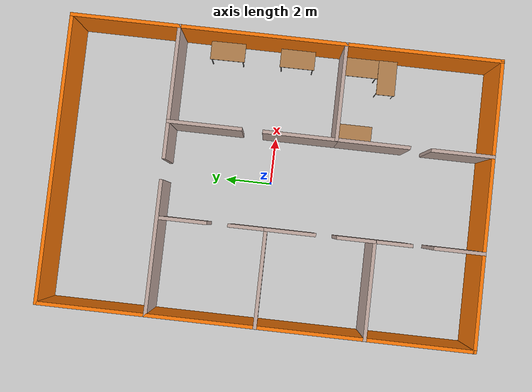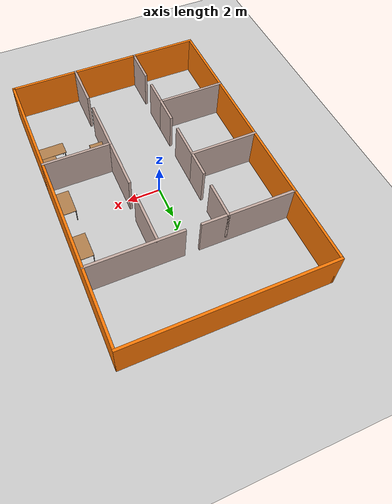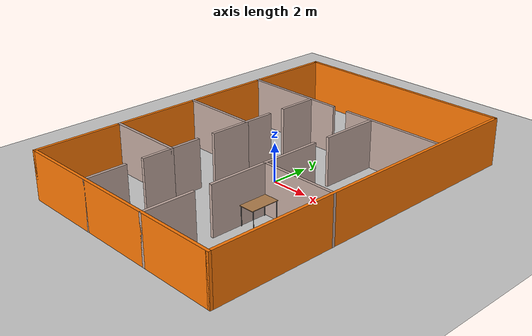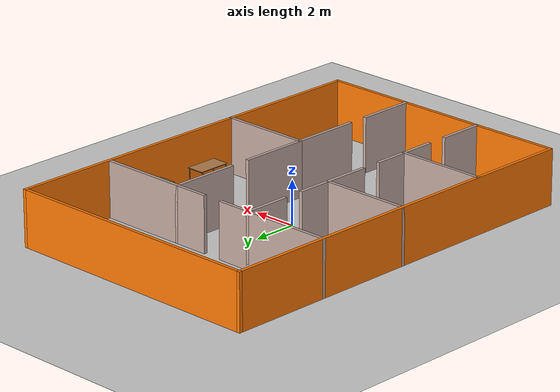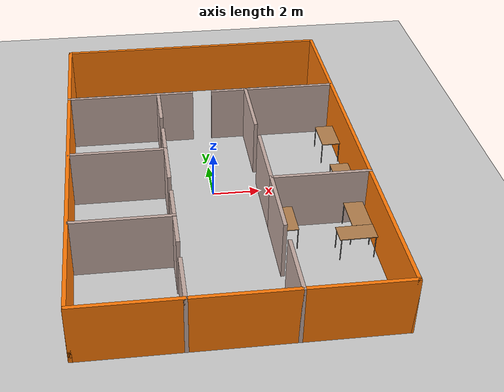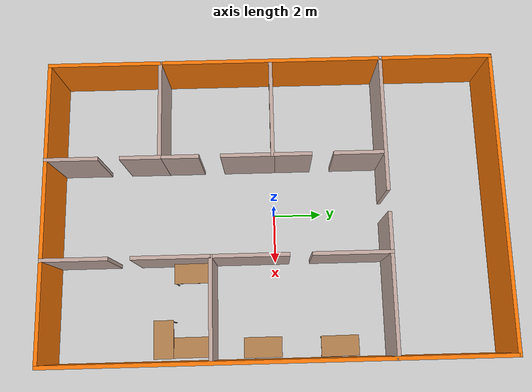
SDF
<sdf version="1.7">
 <world name="default">
  <light name="sun" type="directional">
   <pose>0 0 10 0 -0 0</pose>
   <diffuse>0.8 0.8 0.8 1</diffuse>
   <specular>0.2 0.2 0.2 1</specular>
   <attenuation>
    <range>1000</range>
    <constant>0.9</constant>
    <linear>0.01</linear>
    <quadratic>0.001</quadratic>
   </attenuation>
   <direction>-0.5 0.1 -0.9</direction>
   <spot><inner_angle>0</inner_angle><outer_angle>0</outer_angle><falloff>0</falloff></spot>
  </light>
  <model name="ground_plane">
   <static>1</static>
   <link name="link">
    <collision name="collision">
     <geometry><plane><normal>0 0 1</normal><size>100 100</size></plane></geometry>
     <surface>
      <contact><collide_bitmask>65535</collide_bitmask></contact>
      <friction><ode><mu>100</mu><mu2>50</mu2></ode></friction>
     </surface>
    </collision>
    <visual name="visual">
     <cast_shadows>0</cast_shadows>
     <geometry><plane><normal>0 0 1</normal><size>100 100</size></plane></geometry>
     <material>
      <script><uri>file://media/materials/scripts/gazebo.material</uri><name>Gazebo/Grey</name></script>
     </material>
    </visual>
   </link>
  </model>
  <gravity>0 0 -9.8</gravity>
  <magnetic_field>6e-06 2.3e-05 -4.2e-05</magnetic_field>
  <atmosphere type="adiabatic"/>
  <physics type="ode">
   <max_step_size>0.001</max_step_size>
   <real_time_factor>1</real_time_factor>
   <real_time_update_rate>1000</real_time_update_rate>
  </physics>
  <scene><ambient>0.4 0.4 0.4 1</ambient><background>0.7 0.7 0.7 1</background><shadows>1</shadows></scene>
  <audio><device>default</device></audio>
  <spherical_coordinates>
   <surface_model>EARTH_WGS84</surface_model>
   <latitude_deg>0</latitude_deg>
   <longitude_deg>0</longitude_deg>
   <elevation>0</elevation>
   <heading_deg>0</heading_deg>
  </spherical_coordinates>
  <model name="map_offices">
   <link name="Wall_10">
    <collision name="Wall_10_Collision">
     <geometry><box><size>12.15 0.15 2.5</size></box></geometry>
     <pose>0 0 1.25 0 -0 0</pose>
    </collision>
    <visual name="Wall_10_Visual">
     <pose>0 0 1.25 0 -0 0</pose>
     <geometry><box><size>12.15 0.15 2.5</size></box></geometry>
     <material>
      <script><uri>file://media/materials/scripts/gazebo.material</uri><name>Gazebo/Grey</name></script>
      <ambient>0.996078 0.47451 0.0196078 1</ambient>
     </material>
     <meta><layer>0</layer></meta>
    </visual>
    <pose>0 -9 0 0 -0 0</pose>
   </link>
   <link name="Wall_12">
    <collision name="Wall_12_Collision">
     <geometry><box><size>18.15 0.15 2.5</size></box></geometry>
     <pose>0 0 1.25 0 -0 0</pose>
    </collision>
    <visual name="Wall_12_Visual">
     <pose>0 0 1.25 0 -0 0</pose>
     <geometry><box><size>18.15 0.15 2.5</size></box></geometry>
     <material>
      <script><uri>file://media/materials/scripts/gazebo.material</uri><name>Gazebo/Grey</name></script>
      <ambient>0.996078 0.47451 0.0196078 1</ambient>
     </material>
     <meta><layer>0</layer></meta>
    </visual>
    <pose>-6 0 0 0 -0 -1.5708</pose>
   </link>
   <link name="Wall_14">
    <collision name="Wall_14_Collision">
     <geometry><box><size>18.15 0.15 2.5</size></box></geometry>
     <pose>0 0 1.25 0 -0 0</pose>
    </collision>
    <visual name="Wall_14_Visual">
     <pose>0 0 1.25 0 -0 0</pose>
     <geometry><box><size>18.15 0.15 2.5</size></box></geometry>
     <material>
      <script><uri>file://media/materials/scripts/gazebo.material</uri><name>Gazebo/Grey</name></script>
      <ambient>0.996078 0.47451 0.0196078 1</ambient>
     </material>
     <meta><layer>0</layer></meta>
    </visual>
    <pose>6 0 0 0 -0 -1.5708</pose>
   </link>
   <link name="Wall_17">
    <collision name="Wall_17_Collision">
     <geometry><box><size>5.65 0.15 2.5</size></box></geometry>
     <pose>0 0 1.25 0 -0 0</pose>
    </collision>
    <visual name="Wall_17_Visual">
     <pose>0 0 1.25 0 -0 0</pose>
     <geometry><box><size>5.65 0.15 2.5</size></box></geometry>
     <material>
      <script><uri>file://media/materials/scripts/gazebo.material</uri><name>Gazebo/Grey</name></script>
      <ambient>0.760784 0.662745 0.627451 1</ambient>
     </material>
     <meta><layer>0</layer></meta>
    </visual>
    <pose>-3.25 4.5 0 0 -0 0</pose>
   </link>
   <link name="Wall_19">
    <collision name="Wall_19_Collision">
     <geometry><box><size>5.65 0.15 2.5</size></box></geometry>
     <pose>0 0 1.25 0 -0 0</pose>
    </collision>
    <visual name="Wall_19_Visual">
     <pose>0 0 1.25 0 -0 0</pose>
     <geometry><box><size>5.65 0.15 2.5</size></box></geometry>
     <material>
      <script><uri>file://media/materials/scripts/gazebo.material</uri><name>Gazebo/Grey</name></script>
      <ambient>0.760784 0.662745 0.627451 1</ambient>
     </material>
     <meta><layer>0</layer></meta>
    </visual>
    <pose>3.25 4.5 0 0 -0 0</pose>
   </link>
   <link name="Wall_21">
    <collision name="Wall_21_Collision">
     <geometry><box><size>2.15 0.15 2.5</size></box></geometry>
     <pose>0 0 1.25 0 -0 0</pose>
    </collision>
    <visual name="Wall_21_Visual">
     <pose>0 0 1.25 0 -0 0</pose>
     <geometry><box><size>2.15 0.15 2.5</size></box></geometry>
     <material>
      <script><uri>file://media/materials/scripts/gazebo.material</uri><name>Gazebo/Grey</name></script>
      <ambient>0.760784 0.662745 0.627451 1</ambient>
     </material>
     <meta><layer>0</layer></meta>
    </visual>
    <pose>-2 3.5 0 0 -0 -1.5708</pose>
   </link>
   <link name="Wall_23">
    <collision name="Wall_23_Collision">
     <geometry><box><size>1.65 0.15 2.5</size></box></geometry>
     <pose>0 0 1.25 0 -0 0</pose>
    </collision>
    <visual name="Wall_23_Visual">
     <pose>0 0 1.25 0 -0 0</pose>
     <geometry><box><size>1.65 0.15 2.5</size></box></geometry>
     <material>
      <script><uri>file://media/materials/scripts/gazebo.material</uri><name>Gazebo/Grey</name></script>
      <ambient>0.760784 0.662745 0.627451 1</ambient>
     </material>
     <meta><layer>0</layer></meta>
    </visual>
    <pose>-2 0.75 0 0 -0 -1.5708</pose>
   </link>
   <link name="Wall_25">
    <collision name="Wall_25_Collision">
     <geometry><box><size>4.15 0.15 2.5</size></box></geometry>
     <pose>0 0 1.25 0 -0 0</pose>
    </collision>
    <visual name="Wall_25_Visual">
     <pose>0 0 1.25 0 -0 0</pose>
     <geometry><box><size>4.15 0.15 2.5</size></box></geometry>
     <material>
      <script><uri>file://media/materials/scripts/gazebo.material</uri><name>Gazebo/Grey</name></script>
      <ambient>0.760784 0.662745 0.627451 1</ambient>
     </material>
     <meta><layer>0</layer></meta>
    </visual>
    <pose>-4 0 0 0 -0 3.14159</pose>
   </link>
   <link name="Wall_27">
    <collision name="Wall_27_Collision">
     <geometry><box><size>2.15 0.15 2.5</size></box></geometry>
     <pose>0 0 1.25 0 -0 0</pose>
    </collision>
    <visual name="Wall_27_Visual">
     <pose>0 0 1.25 0 -0 0</pose>
     <geometry><box><size>2.15 0.15 2.5</size></box></geometry>
     <material>
      <script><uri>file://media/materials/scripts/gazebo.material</uri><name>Gazebo/Grey</name></script>
      <ambient>0.760784 0.662745 0.627451 1</ambient>
     </material>
     <meta><layer>0</layer></meta>
    </visual>
    <pose>-2 -1 0 0 -0 -1.5708</pose>
   </link>
   <link name="Wall_29">
    <collision name="Wall_29_Collision">
     <geometry><box><size>1.65 0.15 2.5</size></box></geometry>
     <pose>0 0 1.25 0 -0 0</pose>
    </collision>
    <visual name="Wall_29_Visual">
     <pose>0 0 1.25 0 -0 0</pose>
     <geometry><box><size>1.65 0.15 2.5</size></box></geometry>
     <material>
      <script><uri>file://media/materials/scripts/gazebo.material</uri><name>Gazebo/Grey</name></script>
      <ambient>0.760784 0.662745 0.627451 1</ambient>
     </material>
     <meta><layer>0</layer></meta>
    </visual>
    <pose>-2 -3.75 0 0 -0 -1.5708</pose>
   </link>
   <link name="Wall_31">
    <collision name="Wall_31_Collision">
     <geometry><box><size>4.15 0.15 2.5</size></box></geometry>
     <pose>0 0 1.25 0 -0 0</pose>
    </collision>
    <visual name="Wall_31_Visual">
     <pose>0 0 1.25 0 -0 0</pose>
     <geometry><box><size>4.15 0.15 2.5</size></box></geometry>
     <material>
      <script><uri>file://media/materials/scripts/gazebo.material</uri><name>Gazebo/Grey</name></script>
      <ambient>0.760784 0.662745 0.627451 1</ambient>
     </material>
     <meta><layer>0</layer></meta>
    </visual>
    <pose>-4 -4.5 0 0 -0 3.14159</pose>
   </link>
   <link name="Wall_33">
    <collision name="Wall_33_Collision">
     <geometry><box><size>1.65 0.15 2.5</size></box></geometry>
     <pose>0 0 1.25 0 -0 0</pose>
    </collision>
    <visual name="Wall_33_Visual">
     <pose>0 0 1.25 0 -0 0</pose>
     <geometry><box><size>1.65 0.15 2.5</size></box></geometry>
     <material>
      <script><uri>file://media/materials/scripts/gazebo.material</uri><name>Gazebo/Grey</name></script>
      <ambient>0.760784 0.662745 0.627451 1</ambient>
     </material>
     <meta><layer>0</layer></meta>
    </visual>
    <pose>-2 -5.25 0 0 -0 -1.5708</pose>
   </link>
   <link name="Wall_35">
    <collision name="Wall_35_Collision">
     <geometry><box><size>2.15 0.15 2.5</size></box></geometry>
     <pose>0 0 1.25 0 -0 0</pose>
    </collision>
    <visual name="Wall_35_Visual">
     <pose>0 0 1.25 0 -0 0</pose>
     <geometry><box><size>2.15 0.15 2.5</size></box></geometry>
     <material>
      <script><uri>file://media/materials/scripts/gazebo.material</uri><name>Gazebo/Grey</name></script>
      <ambient>0.760784 0.662745 0.627451 1</ambient>
     </material>
     <meta><layer>0</layer></meta>
    </visual>
    <pose>-2 -8 0 0 -0 -1.5708</pose>
   </link>
   <link name="Wall_37">
    <collision name="Wall_37_Collision">
     <geometry><box><size>3.15 0.15 2.5</size></box></geometry>
     <pose>0 0 1.25 0 -0 0</pose>
    </collision>
    <visual name="Wall_37_Visual">
     <pose>0 0 1.25 0 -0 0</pose>
     <geometry><box><size>3.15 0.15 2.5</size></box></geometry>
     <material>
      <script><uri>file://media/materials/scripts/gazebo.material</uri><name>Gazebo/Grey</name></script>
      <ambient>0.760784 0.662745 0.627451 1</ambient>
     </material>
     <meta><layer>0</layer></meta>
    </visual>
    <pose>2 3 0 0 -0 -1.5708</pose>
   </link>
   <link name="Wall_39">
    <collision name="Wall_39_Collision">
     <geometry><box><size>3.15 0.15 2.5</size></box></geometry>
     <pose>0 0 1.25 0 -0 0</pose>
    </collision>
    <visual name="Wall_39_Visual">
     <pose>0 0 1.25 0 -0 0</pose>
     <geometry><box><size>3.15 0.15 2.5</size></box></geometry>
     <material>
      <script><uri>file://media/materials/scripts/gazebo.material</uri><name>Gazebo/Grey</name></script>
      <ambient>0.760784 0.662745 0.627451 1</ambient>
     </material>
     <meta><layer>0</layer></meta>
    </visual>
    <pose>2 -1 0 0 -0 -1.5708</pose>
   </link>
   <link name="Wall_41">
    <collision name="Wall_41_Collision">
     <geometry><box><size>4.15 0.15 2.5</size></box></geometry>
     <pose>0 0 1.25 0 -0 0</pose>
    </collision>
    <visual name="Wall_41_Visual">
     <pose>0 0 1.25 0 -0 0</pose>
     <geometry><box><size>4.15 0.15 2.5</size></box></geometry>
     <material>
      <script><uri>file://media/materials/scripts/gazebo.material</uri><name>Gazebo/Grey</name></script>
      <ambient>0.760784 0.662745 0.627451 1</ambient>
     </material>
     <meta><layer>0</layer></meta>
    </visual>
    <pose>4 -2.5 0 0 -0 0</pose>
   </link>
   <link name="Wall_43">
    <collision name="Wall_43_Collision">
     <geometry><box><size>3.15 0.15 2.5</size></box></geometry>
     <pose>0 0 1.25 0 -0 0</pose>
    </collision>
    <visual name="Wall_43_Visual">
     <pose>0 0 1.25 0 -0 0</pose>
     <geometry><box><size>3.15 0.15 2.5</size></box></geometry>
     <material>
      <script><uri>file://media/materials/scripts/gazebo.material</uri><name>Gazebo/Grey</name></script>
      <ambient>0.760784 0.662745 0.627451 1</ambient>
     </material>
     <meta><layer>0</layer></meta>
    </visual>
    <pose>2 -4 0 0 -0 -1.5708</pose>
   </link>
   <link name="Wall_45">
    <collision name="Wall_45_Collision">
     <geometry><box><size>2.65 0.15 2.5</size></box></geometry>
     <pose>0 0 1.25 0 -0 0</pose>
    </collision>
    <visual name="Wall_45_Visual">
     <pose>0 0 1.25 0 -0 0</pose>
     <geometry><box><size>2.65 0.15 2.5</size></box></geometry>
     <material>
      <script><uri>file://media/materials/scripts/gazebo.material</uri><name>Gazebo/Grey</name></script>
      <ambient>0.760784 0.662745 0.627451 1</ambient>
     </material>
     <meta><layer>0</layer></meta>
    </visual>
    <pose>2 -7.75 0 0 -0 -1.5708</pose>
   </link>
   <link name="Wall_8">
    <collision name="Wall_8_Collision">
     <geometry><box><size>12.15 0.15 2.5</size></box></geometry>
     <pose>0 0 1.25 0 -0 0</pose>
    </collision>
    <visual name="Wall_8_Visual">
     <pose>0 0 1.25 0 -0 0</pose>
     <geometry><box><size>12.15 0.15 2.5</size></box></geometry>
     <material>
      <script><uri>file://media/materials/scripts/gazebo.material</uri><name>Gazebo/Grey</name></script>
      <ambient>0.996078 0.47451 0.0196078 1</ambient>
     </material>
     <meta><layer>0</layer></meta>
    </visual>
    <pose>0 9 0 0 -0 0</pose>
   </link>
   <static>1</static>
  </model>
  <model name="table">
   <static>1</static>
   <link name="link">
    <collision name="surface">
     <pose>0 0 1 0 -0 0</pose>
     <geometry><box><size>1.5 0.8 0.03</size></box></geometry>
     <surface><friction><ode><mu>0.6</mu><mu2>0.6</mu2></ode></friction></surface>
    </collision>
    <visual name="visual1">
     <pose>0 0 1 0 -0 0</pose>
     <geometry><box><size>1.5 0.8 0.03</size></box></geometry>
     <material>
      <script><uri>file://media/materials/scripts/gazebo.material</uri><name>Gazebo/Wood</name></script>
     </material>
    </visual>
    <collision name="front_left_leg">
     <pose>0.68 0.38 0.5 0 -0 0</pose>
     <geometry><cylinder><radius>0.02</radius><length>1</length></cylinder></geometry>
    </collision>
    <visual name="front_left_leg">
     <pose>0.68 0.38 0.5 0 -0 0</pose>
     <geometry><cylinder><radius>0.02</radius><length>1</length></cylinder></geometry>
     <material>
      <script><uri>file://media/materials/scripts/gazebo.material</uri><name>Gazebo/Grey</name></script>
     </material>
    </visual>
    <collision name="front_right_leg">
     <pose>0.68 -0.38 0.5 0 -0 0</pose>
     <geometry><cylinder><radius>0.02</radius><length>1</length></cylinder></geometry>
    </collision>
    <visual name="front_right_leg">
     <pose>0.68 -0.38 0.5 0 -0 0</pose>
     <geometry><cylinder><radius>0.02</radius><length>1</length></cylinder></geometry>
     <material>
      <script><uri>file://media/materials/scripts/gazebo.material</uri><name>Gazebo/Grey</name></script>
     </material>
    </visual>
    <collision name="back_right_leg">
     <pose>-0.68 -0.38 0.5 0 -0 0</pose>
     <geometry><cylinder><radius>0.02</radius><length>1</length></cylinder></geometry>
    </collision>
    <visual name="back_right_leg">
     <pose>-0.68 -0.38 0.5 0 -0 0</pose>
     <geometry><cylinder><radius>0.02</radius><length>1</length></cylinder></geometry>
     <material>
      <script><uri>file://media/materials/scripts/gazebo.material</uri><name>Gazebo/Grey</name></script>
     </material>
    </visual>
    <collision name="back_left_leg">
     <pose>-0.68 0.38 0.5 0 -0 0</pose>
     <geometry><cylinder><radius>0.02</radius><length>1</length></cylinder></geometry>
    </collision>
    <visual name="back_left_leg">
     <pose>-0.68 0.38 0.5 0 -0 0</pose>
     <geometry><cylinder><radius>0.02</radius><length>1</length></cylinder></geometry>
     <material>
      <script><uri>file://media/materials/scripts/gazebo.material</uri><name>Gazebo/Grey</name></script>
     </material>
    </visual>
   </link>
   <pose>5.48204 2.47988 0 0 0 -1.56109</pose>
  </model>
  <model name="table_0">
   <static>1</static>
   <link name="link">
    <collision name="surface">
     <pose>0 0 1 0 -0 0</pose>
     <geometry><box><size>1.5 0.8 0.03</size></box></geometry>
     <surface><friction><ode><mu>0.6</mu><mu2>0.6</mu2></ode></friction></surface>
    </collision>
    <visual name="visual1">
     <pose>0 0 1 0 -0 0</pose>
     <geometry><box><size>1.5 0.8 0.03</size></box></geometry>
     <material>
      <script><uri>file://media/materials/scripts/gazebo.material</uri><name>Gazebo/Wood</name></script>
     </material>
    </visual>
    <collision name="front_left_leg">
     <pose>0.68 0.38 0.5 0 -0 0</pose>
     <geometry><cylinder><radius>0.02</radius><length>1</length></cylinder></geometry>
    </collision>
    <visual name="front_left_leg">
     <pose>0.68 0.38 0.5 0 -0 0</pose>
     <geometry><cylinder><radius>0.02</radius><length>1</length></cylinder></geometry>
     <material>
      <script><uri>file://media/materials/scripts/gazebo.material</uri><name>Gazebo/Grey</name></script>
     </material>
    </visual>
    <collision name="front_right_leg">
     <pose>0.68 -0.38 0.5 0 -0 0</pose>
     <geometry><cylinder><radius>0.02</radius><length>1</length></cylinder></geometry>
    </collision>
    <visual name="front_right_leg">
     <pose>0.68 -0.38 0.5 0 -0 0</pose>
     <geometry><cylinder><radius>0.02</radius><length>1</length></cylinder></geometry>
     <material>
      <script><uri>file://media/materials/scripts/gazebo.material</uri><name>Gazebo/Grey</name></script>
     </material>
    </visual>
    <collision name="back_right_leg">
     <pose>-0.68 -0.38 0.5 0 -0 0</pose>
     <geometry><cylinder><radius>0.02</radius><length>1</length></cylinder></geometry>
    </collision>
    <visual name="back_right_leg">
     <pose>-0.68 -0.38 0.5 0 -0 0</pose>
     <geometry><cylinder><radius>0.02</radius><length>1</length></cylinder></geometry>
     <material>
      <script><uri>file://media/materials/scripts/gazebo.material</uri><name>Gazebo/Grey</name></script>
     </material>
    </visual>
    <collision name="back_left_leg">
     <pose>-0.68 0.38 0.5 0 -0 0</pose>
     <geometry><cylinder><radius>0.02</radius><length>1</length></cylinder></geometry>
    </collision>
    <visual name="back_left_leg">
     <pose>-0.68 0.38 0.5 0 -0 0</pose>
     <geometry><cylinder><radius>0.02</radius><length>1</length></cylinder></geometry>
     <material>
      <script><uri>file://media/materials/scripts/gazebo.material</uri><name>Gazebo/Grey</name></script>
     </material>
    </visual>
   </link>
   <pose>5.46949 -0.565227 0 0 -0 1.57411</pose>
  </model>
  <model name="table_0_clone">
   <static>1</static>
   <link name="link">
    <collision name="surface">
     <pose>0 0 1 0 -0 0</pose>
     <geometry><box><size>1.5 0.8 0.03</size></box></geometry>
     <surface><friction><ode><mu>0.6</mu><mu2>0.6</mu2></ode></friction></surface>
    </collision>
    <visual name="visual1">
     <pose>0 0 1 0 -0 0</pose>
     <geometry><box><size>1.5 0.8 0.03</size></box></geometry>
     <material>
      <script><uri>file://media/materials/scripts/gazebo.material</uri><name>Gazebo/Wood</name></script>
     </material>
    </visual>
    <collision name="front_left_leg">
     <pose>0.68 0.38 0.5 0 -0 0</pose>
     <geometry><cylinder><radius>0.02</radius><length>1</length></cylinder></geometry>
    </collision>
    <visual name="front_left_leg">
     <pose>0.68 0.38 0.5 0 -0 0</pose>
     <geometry><cylinder><radius>0.02</radius><length>1</length></cylinder></geometry>
     <material>
      <script><uri>file://media/materials/scripts/gazebo.material</uri><name>Gazebo/Grey</name></script>
     </material>
    </visual>
    <collision name="front_right_leg">
     <pose>0.68 -0.38 0.5 0 -0 0</pose>
     <geometry><cylinder><radius>0.02</radius><length>1</length></cylinder></geometry>
    </collision>
    <visual name="front_right_leg">
     <pose>0.68 -0.38 0.5 0 -0 0</pose>
     <geometry><cylinder><radius>0.02</radius><length>1</length></cylinder></geometry>
     <material>
      <script><uri>file://media/materials/scripts/gazebo.material</uri><name>Gazebo/Grey</name></script>
     </material>
    </visual>
    <collision name="back_right_leg">
     <pose>-0.68 -0.38 0.5 0 -0 0</pose>
     <geometry><cylinder><radius>0.02</radius><length>1</length></cylinder></geometry>
    </collision>
    <visual name="back_right_leg">
     <pose>-0.68 -0.38 0.5 0 -0 0</pose>
     <geometry><cylinder><radius>0.02</radius><length>1</length></cylinder></geometry>
     <material>
      <script><uri>file://media/materials/scripts/gazebo.material</uri><name>Gazebo/Grey</name></script>
     </material>
    </visual>
    <collision name="back_left_leg">
     <pose>-0.68 0.38 0.5 0 -0 0</pose>
     <geometry><cylinder><radius>0.02</radius><length>1</length></cylinder></geometry>
    </collision>
    <visual name="back_left_leg">
     <pose>-0.68 0.38 0.5 0 -0 0</pose>
     <geometry><cylinder><radius>0.02</radius><length>1</length></cylinder></geometry>
     <material>
      <script><uri>file://media/materials/scripts/gazebo.material</uri><name>Gazebo/Grey</name></script>
     </material>
    </visual>
   </link>
   <pose>5.40498 -3.33775 0 0 -0 1.57411</pose>
  </model>
  <model name="table_0_clone_clone">
   <static>1</static>
   <link name="link">
    <collision name="surface">
     <pose>0 0 1 0 -0 0</pose>
     <geometry><box><size>1.5 0.8 0.03</size></box></geometry>
     <surface><friction><ode><mu>0.6</mu><mu2>0.6</mu2></ode></friction></surface>
    </collision>
    <visual name="visual1">
     <pose>0 0 1 0 -0 0</pose>
     <geometry><box><size>1.5 0.8 0.03</size></box></geometry>
     <material>
      <script><uri>file://media/materials/scripts/gazebo.material</uri><name>Gazebo/Wood</name></script>
     </material>
    </visual>
    <collision name="front_left_leg">
     <pose>0.68 0.38 0.5 0 -0 0</pose>
     <geometry><cylinder><radius>0.02</radius><length>1</length></cylinder></geometry>
    </collision>
    <visual name="front_left_leg">
     <pose>0.68 0.38 0.5 0 -0 0</pose>
     <geometry><cylinder><radius>0.02</radius><length>1</length></cylinder></geometry>
     <material>
      <script><uri>file://media/materials/scripts/gazebo.material</uri><name>Gazebo/Grey</name></script>
     </material>
    </visual>
    <collision name="front_right_leg">
     <pose>0.68 -0.38 0.5 0 -0 0</pose>
     <geometry><cylinder><radius>0.02</radius><length>1</length></cylinder></geometry>
    </collision>
    <visual name="front_right_leg">
     <pose>0.68 -0.38 0.5 0 -0 0</pose>
     <geometry><cylinder><radius>0.02</radius><length>1</length></cylinder></geometry>
     <material>
      <script><uri>file://media/materials/scripts/gazebo.material</uri><name>Gazebo/Grey</name></script>
     </material>
    </visual>
    <collision name="back_right_leg">
     <pose>-0.68 -0.38 0.5 0 -0 0</pose>
     <geometry><cylinder><radius>0.02</radius><length>1</length></cylinder></geometry>
    </collision>
    <visual name="back_right_leg">
     <pose>-0.68 -0.38 0.5 0 -0 0</pose>
     <geometry><cylinder><radius>0.02</radius><length>1</length></cylinder></geometry>
     <material>
      <script><uri>file://media/materials/scripts/gazebo.material</uri><name>Gazebo/Grey</name></script>
     </material>
    </visual>
    <collision name="back_left_leg">
     <pose>-0.68 0.38 0.5 0 -0 0</pose>
     <geometry><cylinder><radius>0.02</radius><length>1</length></cylinder></geometry>
    </collision>
    <visual name="back_left_leg">
     <pose>-0.68 0.38 0.5 0 -0 0</pose>
     <geometry><cylinder><radius>0.02</radius><length>1</length></cylinder></geometry>
     <material>
      <script><uri>file://media/materials/scripts/gazebo.material</uri><name>Gazebo/Grey</name></script>
     </material>
    </visual>
   </link>
   <pose>2.48589 -3.33251 0 0 -0 1.57411</pose>
  </model>
  <model name="table_0_clone_clone_0">
   <static>1</static>
   <link name="link">
    <collision name="surface">
     <pose>0 0 1 0 -0 0</pose>
     <geometry><box><size>1.5 0.8 0.03</size></box></geometry>
     <surface><friction><ode><mu>0.6</mu><mu2>0.6</mu2></ode></friction></surface>
    </collision>
    <visual name="visual1">
     <pose>0 0 1 0 -0 0</pose>
     <geometry><box><size>1.5 0.8 0.03</size></box></geometry>
     <material>
      <script><uri>file://media/materials/scripts/gazebo.material</uri><name>Gazebo/Wood</name></script>
     </material>
    </visual>
    <collision name="front_left_leg">
     <pose>0.68 0.38 0.5 0 -0 0</pose>
     <geometry><cylinder><radius>0.02</radius><length>1</length></cylinder></geometry>
    </collision>
    <visual name="front_left_leg">
     <pose>0.68 0.38 0.5 0 -0 0</pose>
     <geometry><cylinder><radius>0.02</radius><length>1</length></cylinder></geometry>
     <material>
      <script><uri>file://media/materials/scripts/gazebo.material</uri><name>Gazebo/Grey</name></script>
     </material>
    </visual>
    <collision name="front_right_leg">
     <pose>0.68 -0.38 0.5 0 -0 0</pose>
     <geometry><cylinder><radius>0.02</radius><length>1</length></cylinder></geometry>
    </collision>
    <visual name="front_right_leg">
     <pose>0.68 -0.38 0.5 0 -0 0</pose>
     <geometry><cylinder><radius>0.02</radius><length>1</length></cylinder></geometry>
     <material>
      <script><uri>file://media/materials/scripts/gazebo.material</uri><name>Gazebo/Grey</name></script>
     </material>
    </visual>
    <collision name="back_right_leg">
     <pose>-0.68 -0.38 0.5 0 -0 0</pose>
     <geometry><cylinder><radius>0.02</radius><length>1</length></cylinder></geometry>
    </collision>
    <visual name="back_right_leg">
     <pose>-0.68 -0.38 0.5 0 -0 0</pose>
     <geometry><cylinder><radius>0.02</radius><length>1</length></cylinder></geometry>
     <material>
      <script><uri>file://media/materials/scripts/gazebo.material</uri><name>Gazebo/Grey</name></script>
     </material>
    </visual>
    <collision name="back_left_leg">
     <pose>-0.68 0.38 0.5 0 -0 0</pose>
     <geometry><cylinder><radius>0.02</radius><length>1</length></cylinder></geometry>
    </collision>
    <visual name="back_left_leg">
     <pose>-0.68 0.38 0.5 0 -0 0</pose>
     <geometry><cylinder><radius>0.02</radius><length>1</length></cylinder></geometry>
     <material>
      <script><uri>file://media/materials/scripts/gazebo.material</uri><name>Gazebo/Grey</name></script>
     </material>
    </visual>
   </link>
   <pose>5.07485 -4.49326 0 0 -0 0.010404</pose>
  </model>
 </world>
</sdf>
